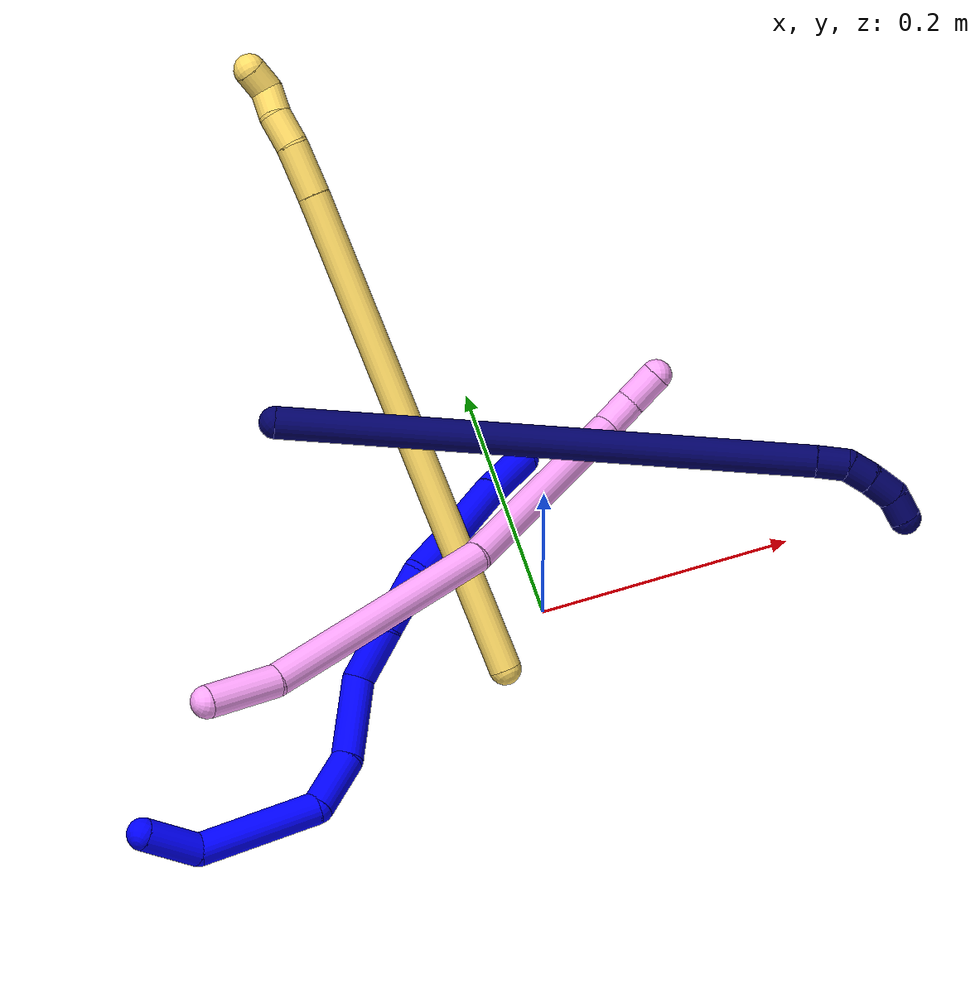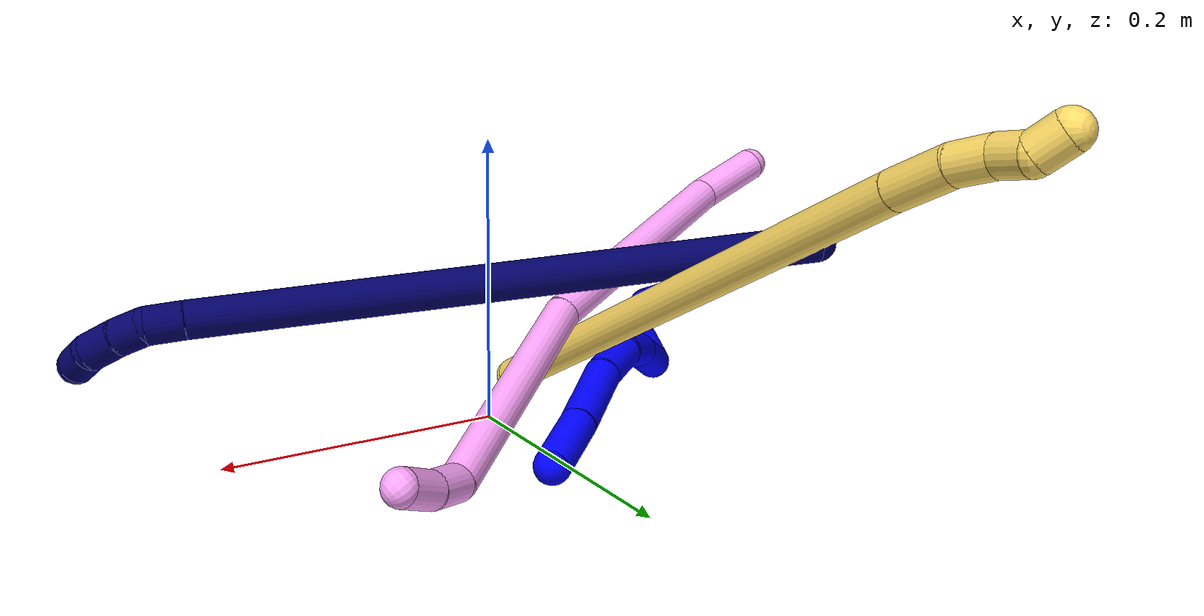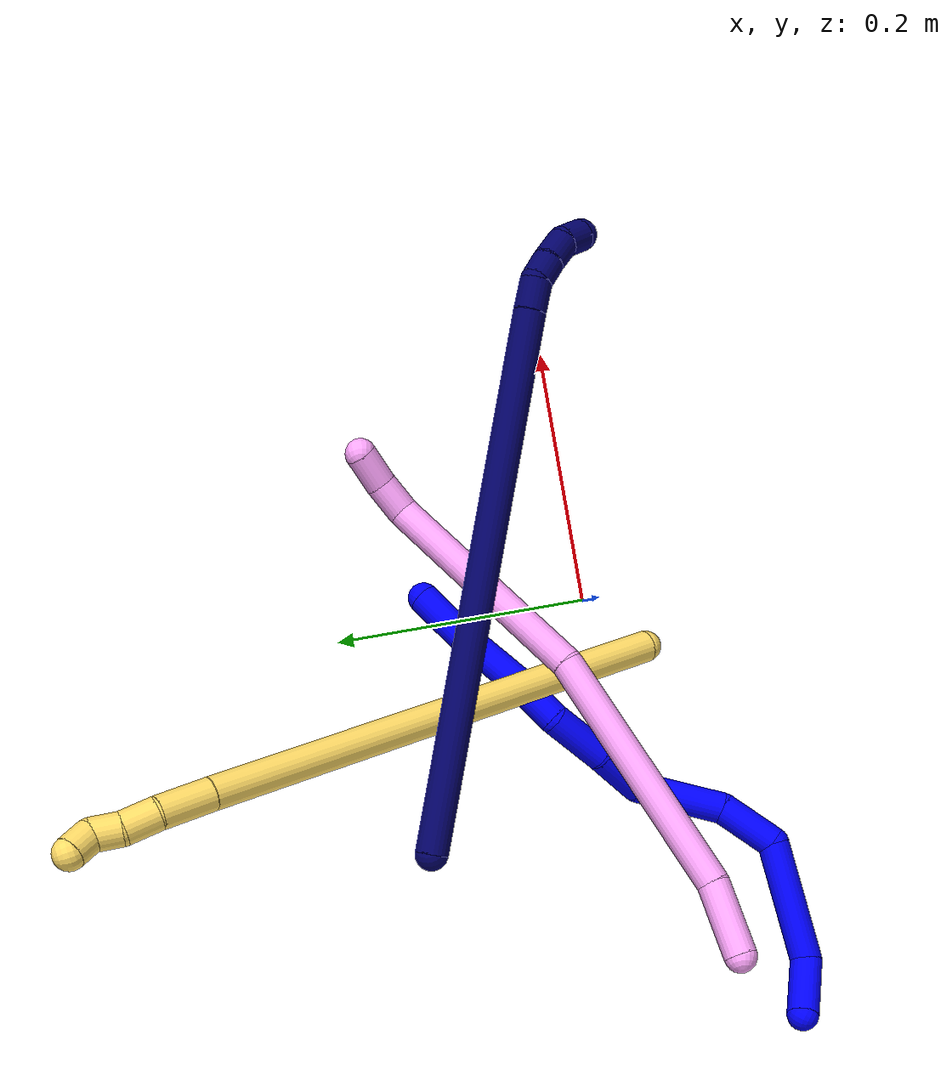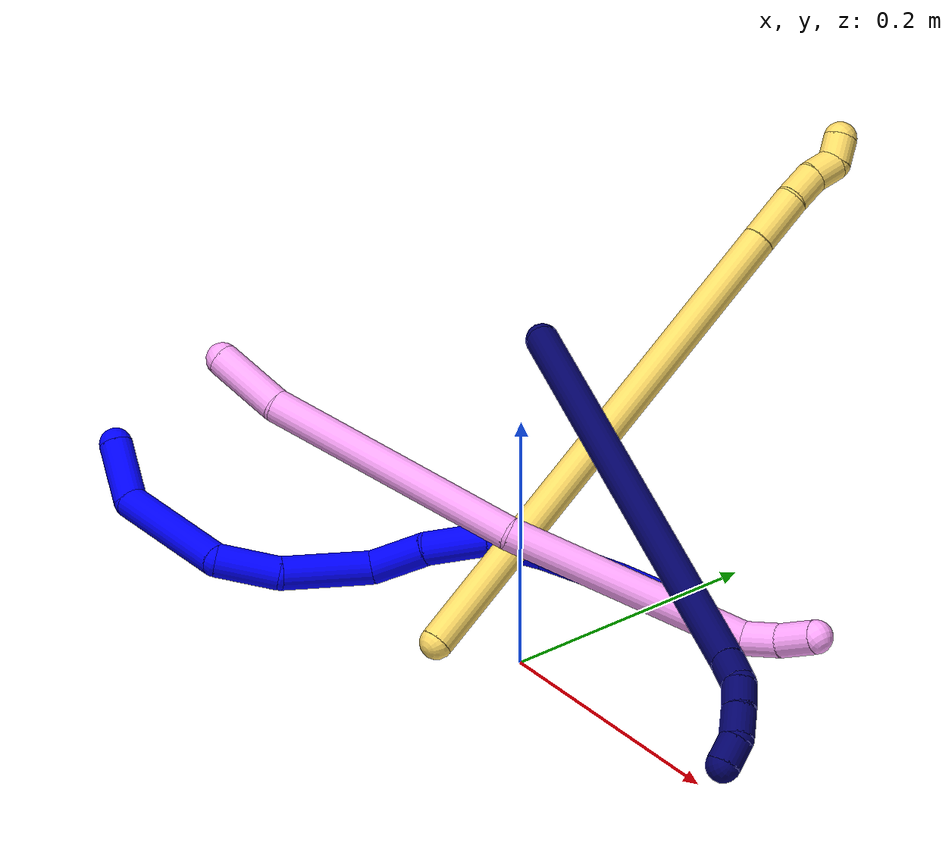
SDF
<sdf version="1.7">
 <world name="default">
  <model name="photoneo_s_sensor">
   <static>1</static>
   <pose>0 0 2 1.57079 1.57079 3.14159</pose>
   <link name="link">
    <inertial><mass>0.1</mass></inertial>
    <sensor name="sensor" type="depth">
     <update_rate>30</update_rate>
     <camera>
      <horizontal_fov>1.22</horizontal_fov>
      <image><width>1920</width><height>1200</height><format>B8G8R8</format></image>
      <clip><near>0.1</near><far>4</far></clip>
      <depth_camera><output>points</output></depth_camera>
     </camera>
     <plugin name="camera_plugin" filename="libgazebo_ros_depth_camera.so">
      <baseline>0.2</baseline>
      <alwaysOn>1</alwaysOn>
      <updateRate>0.0</updateRate>
      <cameraName>camera_ir</cameraName>
      <imageTopicName>/camera/color/image_raw</imageTopicName>
      <cameraInfoTopicName>/camera/color/camera_info</cameraInfoTopicName>
      <depthImageTopicName>/camera/depth/image_raw</depthImageTopicName>
      <depthImageCameraInfoTopicName>/camera/depth/camera_info</depthImageCameraInfoTopicName>
      <pointCloudTopicName>/camera/depth/points</pointCloudTopicName>
      <frameName>fr_optical</frameName>
      <pointCloudCutoff>0.1</pointCloudCutoff>
      <pointCloudCutoffMax>2.0</pointCloudCutoffMax>
      <distortionK1>0</distortionK1>
      <distortionK2>0</distortionK2>
      <distortionK3>0</distortionK3>
      <distortionT1>0</distortionT1>
      <distortionT2>0</distortionT2>
      <CxPrime>0</CxPrime>
      <Cx>0</Cx>
      <Cy>0</Cy>
      <focalLength>0</focalLength>
      <hackBaseline>0</hackBaseline>
     </plugin>
    </sensor>
   </link>
  </model>
  <model name="1">
   <static>0</static>
   <link name="1">
    <collision name="collision-cylinder-e_1_1_4">
     <pose>0.011284 -0.018383 -0.009575 2.05102 0.498534 0.794618</pose>
     <geometry><cylinder><radius>0.0125</radius><length>0.047199</length></cylinder></geometry>
     <surface>
      <friction><ode><mu>1.16</mu><mu2>1.16</mu2><slip1>0</slip1><slip2>0</slip2></ode></friction>
      <contact><ode><kp>1e+06</kp><kd>1</kd><max_vel>0</max_vel><min_depth>0.001</min_depth></ode></contact>
     </surface>
    </collision>
    <visual name="visual-cylinder-e_1_1_4">
     <pose>0.011284 -0.018383 -0.009575 2.05102 0.498534 0.794618</pose>
     <geometry><cylinder><radius>0.0125</radius><length>0.047199</length></cylinder></geometry>
     <material><ambient>0 0 1 1</ambient></material>
    </visual>
    <collision name="collision-cylinder-e_2_4_5">
     <pose>0.05737 -0.047546 -0.049607 2.80137 0.822556 2.39122</pose>
     <geometry><cylinder><radius>0.0125</radius><length>0.094974</length></cylinder></geometry>
     <surface>
      <friction><ode><mu>1.16</mu><mu2>1.16</mu2><slip1>0</slip1><slip2>0</slip2></ode></friction>
      <contact><ode><kp>1e+06</kp><kd>1</kd><max_vel>0</max_vel><min_depth>0.001</min_depth></ode></contact>
     </surface>
    </collision>
    <visual name="visual-cylinder-e_2_4_5">
     <pose>0.05737 -0.047546 -0.049607 2.80137 0.822556 2.39122</pose>
     <geometry><cylinder><radius>0.0125</radius><length>0.094974</length></cylinder></geometry>
     <material><ambient>0 0 1 1</ambient></material>
    </visual>
    <collision name="collision-cylinder-e_3_5_6">
     <pose>0.097305 -0.056148 -0.103307 -3.04811 0.216403 -2.32835</pose>
     <geometry><cylinder><radius>0.0125</radius><length>0.047808</length></cylinder></geometry>
     <surface>
      <friction><ode><mu>1.16</mu><mu2>1.16</mu2><slip1>0</slip1><slip2>0</slip2></ode></friction>
      <contact><ode><kp>1e+06</kp><kd>1</kd><max_vel>0</max_vel><min_depth>0.001</min_depth></ode></contact>
     </surface>
    </collision>
    <visual name="visual-cylinder-e_3_5_6">
     <pose>0.097305 -0.056148 -0.103307 -3.04811 0.216403 -2.32835</pose>
     <geometry><cylinder><radius>0.0125</radius><length>0.047808</length></cylinder></geometry>
     <material><ambient>0 0 1 1</ambient></material>
    </visual>
    <collision name="collision-cylinder-e_4_6_7">
     <pose>0.100575 -0.042153 -0.159298 -2.79532 -0.053452 0.303361</pose>
     <geometry><cylinder><radius>0.0125</radius><length>0.069725</length></cylinder></geometry>
     <surface>
      <friction><ode><mu>1.16</mu><mu2>1.16</mu2><slip1>0</slip1><slip2>0</slip2></ode></friction>
      <contact><ode><kp>1e+06</kp><kd>1</kd><max_vel>0</max_vel><min_depth>0.001</min_depth></ode></contact>
     </surface>
    </collision>
    <visual name="visual-cylinder-e_4_6_7">
     <pose>0.100575 -0.042153 -0.159298 -2.79532 -0.053452 0.303361</pose>
     <geometry><cylinder><radius>0.0125</radius><length>0.069725</length></cylinder></geometry>
     <material><ambient>0 0 1 1</ambient></material>
    </visual>
    <collision name="collision-cylinder-e_5_7_8">
     <pose>0.111567 -0.017863 -0.206488 -2.42923 0.592733 -1.37453</pose>
     <geometry><cylinder><radius>0.0125</radius><length>0.046021</length></cylinder></geometry>
     <surface>
      <friction><ode><mu>1.16</mu><mu2>1.16</mu2><slip1>0</slip1><slip2>0</slip2></ode></friction>
      <contact><ode><kp>1e+06</kp><kd>1</kd><max_vel>0</max_vel><min_depth>0.001</min_depth></ode></contact>
     </surface>
    </collision>
    <visual name="visual-cylinder-e_5_7_8">
     <pose>0.111567 -0.017863 -0.206488 -2.42923 0.592733 -1.37453</pose>
     <geometry><cylinder><radius>0.0125</radius><length>0.046021</length></cylinder></geometry>
     <material><ambient>0 0 1 1</ambient></material>
    </visual>
    <collision name="collision-cylinder-e_6_8_9">
     <pose>0.136008 0.004935 -0.24018 -2.64926 0.487725 -1.56101</pose>
     <geometry><cylinder><radius>0.0125</radius><length>0.049448</length></cylinder></geometry>
     <surface>
      <friction><ode><mu>1.16</mu><mu2>1.16</mu2><slip1>0</slip1><slip2>0</slip2></ode></friction>
      <contact><ode><kp>1e+06</kp><kd>1</kd><max_vel>0</max_vel><min_depth>0.001</min_depth></ode></contact>
     </surface>
    </collision>
    <visual name="visual-cylinder-e_6_8_9">
     <pose>0.136008 0.004935 -0.24018 -2.64926 0.487725 -1.56101</pose>
     <geometry><cylinder><radius>0.0125</radius><length>0.049448</length></cylinder></geometry>
     <material><ambient>0 0 1 1</ambient></material>
    </visual>
    <collision name="collision-cylinder-e_7_9_10">
     <pose>0.155527 0.016036 -0.278009 -3.09978 0.403207 -2.9377</pose>
     <geometry><cylinder><radius>0.0125</radius><length>0.04044</length></cylinder></geometry>
     <surface>
      <friction><ode><mu>1.16</mu><mu2>1.16</mu2><slip1>0</slip1><slip2>0</slip2></ode></friction>
      <contact><ode><kp>1e+06</kp><kd>1</kd><max_vel>0</max_vel><min_depth>0.001</min_depth></ode></contact>
     </surface>
    </collision>
    <visual name="visual-cylinder-e_7_9_10">
     <pose>0.155527 0.016036 -0.278009 -3.09978 0.403207 -2.9377</pose>
     <geometry><cylinder><radius>0.0125</radius><length>0.04044</length></cylinder></geometry>
     <material><ambient>0 0 1 1</ambient></material>
    </visual>
    <collision name="collision-cylinder-e_8_10_11">
     <pose>0.170339 0.015429 -0.324913 3.09272 0.237961 2.73825</pose>
     <geometry><cylinder><radius>0.0125</radius><length>0.058357</length></cylinder></geometry>
     <surface>
      <friction><ode><mu>1.16</mu><mu2>1.16</mu2><slip1>0</slip1><slip2>0</slip2></ode></friction>
      <contact><ode><kp>1e+06</kp><kd>1</kd><max_vel>0</max_vel><min_depth>0.001</min_depth></ode></contact>
     </surface>
    </collision>
    <visual name="visual-cylinder-e_8_10_11">
     <pose>0.170339 0.015429 -0.324913 3.09272 0.237961 2.73825</pose>
     <geometry><cylinder><radius>0.0125</radius><length>0.058357</length></cylinder></geometry>
     <material><ambient>0 0 1 1</ambient></material>
    </visual>
    <collision name="collision-cylinder-e_9_11_2">
     <pose>0.183823 0.011527 -0.375138 3.0272 0.291134 2.39691</pose>
     <geometry><cylinder><radius>0.0125</radius><length>0.046028</length></cylinder></geometry>
     <surface>
      <friction><ode><mu>1.16</mu><mu2>1.16</mu2><slip1>0</slip1><slip2>0</slip2></ode></friction>
      <contact><ode><kp>1e+06</kp><kd>1</kd><max_vel>0</max_vel><min_depth>0.001</min_depth></ode></contact>
     </surface>
    </collision>
    <visual name="visual-cylinder-e_9_11_2">
     <pose>0.183823 0.011527 -0.375138 3.0272 0.291134 2.39691</pose>
     <geometry><cylinder><radius>0.0125</radius><length>0.046028</length></cylinder></geometry>
     <material><ambient>0 0 1 1</ambient></material>
    </visual>
    <collision name="collision-sphere-2">
     <pose>0.190429 0.009011 -0.397039 0 -0 0</pose>
     <geometry><sphere><radius>0.0125</radius></sphere></geometry>
     <surface>
      <friction><ode><mu>1.16</mu><mu2>1.16</mu2><slip1>0</slip1><slip2>0</slip2></ode></friction>
      <contact><ode><kp>1e+06</kp><kd>1</kd><max_vel>0</max_vel><min_depth>0.001</min_depth></ode></contact>
     </surface>
    </collision>
    <visual name="visual-sphere-2">
     <pose>0.190429 0.009011 -0.397039 0 -0 0</pose>
     <geometry><sphere><radius>0.0125</radius></sphere></geometry>
     <material><ambient>0 0 1 1</ambient></material>
    </visual>
    <collision name="collision-sphere-11">
     <pose>0.177217 0.014043 -0.353236 0 -0 0</pose>
     <geometry><sphere><radius>0.0125</radius></sphere></geometry>
     <surface>
      <friction><ode><mu>1.16</mu><mu2>1.16</mu2><slip1>0</slip1><slip2>0</slip2></ode></friction>
      <contact><ode><kp>1e+06</kp><kd>1</kd><max_vel>0</max_vel><min_depth>0.001</min_depth></ode></contact>
     </surface>
    </collision>
    <visual name="visual-sphere-11">
     <pose>0.177217 0.014043 -0.353236 0 -0 0</pose>
     <geometry><sphere><radius>0.0125</radius></sphere></geometry>
     <material><ambient>0 0 1 1</ambient></material>
    </visual>
    <collision name="collision-sphere-10">
     <pose>0.163461 0.016814 -0.296591 0 -0 0</pose>
     <geometry><sphere><radius>0.0125</radius></sphere></geometry>
     <surface>
      <friction><ode><mu>1.16</mu><mu2>1.16</mu2><slip1>0</slip1><slip2>0</slip2></ode></friction>
      <contact><ode><kp>1e+06</kp><kd>1</kd><max_vel>0</max_vel><min_depth>0.001</min_depth></ode></contact>
     </surface>
    </collision>
    <visual name="visual-sphere-10">
     <pose>0.163461 0.016814 -0.296591 0 -0 0</pose>
     <geometry><sphere><radius>0.0125</radius></sphere></geometry>
     <material><ambient>0 0 1 1</ambient></material>
    </visual>
    <collision name="collision-sphere-9">
     <pose>0.147594 0.015259 -0.259427 0 -0 0</pose>
     <geometry><sphere><radius>0.0125</radius></sphere></geometry>
     <surface>
      <friction><ode><mu>1.16</mu><mu2>1.16</mu2><slip1>0</slip1><slip2>0</slip2></ode></friction>
      <contact><ode><kp>1e+06</kp><kd>1</kd><max_vel>0</max_vel><min_depth>0.001</min_depth></ode></contact>
     </surface>
    </collision>
    <visual name="visual-sphere-9">
     <pose>0.147594 0.015259 -0.259427 0 -0 0</pose>
     <geometry><sphere><radius>0.0125</radius></sphere></geometry>
     <material><ambient>0 0 1 1</ambient></material>
    </visual>
    <collision name="collision-sphere-4">
     <pose>0.022568 -0.036765 -0.019151 0 -0 0</pose>
     <geometry><sphere><radius>0.0125</radius></sphere></geometry>
     <surface>
      <friction><ode><mu>1.16</mu><mu2>1.16</mu2><slip1>0</slip1><slip2>0</slip2></ode></friction>
      <contact><ode><kp>1e+06</kp><kd>1</kd><max_vel>0</max_vel><min_depth>0.001</min_depth></ode></contact>
     </surface>
    </collision>
    <visual name="visual-sphere-4">
     <pose>0.022568 -0.036765 -0.019151 0 -0 0</pose>
     <geometry><sphere><radius>0.0125</radius></sphere></geometry>
     <material><ambient>0 0 1 1</ambient></material>
    </visual>
    <collision name="collision-sphere-1">
     <geometry><sphere><radius>0.0125</radius></sphere></geometry>
     <surface>
      <friction><ode><mu>1.16</mu><mu2>1.16</mu2><slip1>0</slip1><slip2>0</slip2></ode></friction>
      <contact><ode><kp>1e+06</kp><kd>1</kd><max_vel>0</max_vel><min_depth>0.001</min_depth></ode></contact>
     </surface>
    </collision>
    <visual name="visual-sphere-1">
     <geometry><sphere><radius>0.0125</radius></sphere></geometry>
     <material><ambient>0 0 1 1</ambient></material>
    </visual>
    <collision name="collision-sphere-8">
     <pose>0.124422 -0.005389 -0.220933 0 -0 0</pose>
     <geometry><sphere><radius>0.0125</radius></sphere></geometry>
     <surface>
      <friction><ode><mu>1.16</mu><mu2>1.16</mu2><slip1>0</slip1><slip2>0</slip2></ode></friction>
      <contact><ode><kp>1e+06</kp><kd>1</kd><max_vel>0</max_vel><min_depth>0.001</min_depth></ode></contact>
     </surface>
    </collision>
    <visual name="visual-sphere-8">
     <pose>0.124422 -0.005389 -0.220933 0 -0 0</pose>
     <geometry><sphere><radius>0.0125</radius></sphere></geometry>
     <material><ambient>0 0 1 1</ambient></material>
    </visual>
    <collision name="collision-sphere-5">
     <pose>0.092173 -0.058327 -0.080062 0 -0 0</pose>
     <geometry><sphere><radius>0.0125</radius></sphere></geometry>
     <surface>
      <friction><ode><mu>1.16</mu><mu2>1.16</mu2><slip1>0</slip1><slip2>0</slip2></ode></friction>
      <contact><ode><kp>1e+06</kp><kd>1</kd><max_vel>0</max_vel><min_depth>0.001</min_depth></ode></contact>
     </surface>
    </collision>
    <visual name="visual-sphere-5">
     <pose>0.092173 -0.058327 -0.080062 0 -0 0</pose>
     <geometry><sphere><radius>0.0125</radius></sphere></geometry>
     <material><ambient>0 0 1 1</ambient></material>
    </visual>
    <collision name="collision-sphere-6">
     <pose>0.102438 -0.053969 -0.126551 0 -0 0</pose>
     <geometry><sphere><radius>0.0125</radius></sphere></geometry>
     <surface>
      <friction><ode><mu>1.16</mu><mu2>1.16</mu2><slip1>0</slip1><slip2>0</slip2></ode></friction>
      <contact><ode><kp>1e+06</kp><kd>1</kd><max_vel>0</max_vel><min_depth>0.001</min_depth></ode></contact>
     </surface>
    </collision>
    <visual name="visual-sphere-6">
     <pose>0.102438 -0.053969 -0.126551 0 -0 0</pose>
     <geometry><sphere><radius>0.0125</radius></sphere></geometry>
     <material><ambient>0 0 1 1</ambient></material>
    </visual>
    <collision name="collision-sphere-7">
     <pose>0.098713 -0.030338 -0.192044 0 -0 0</pose>
     <geometry><sphere><radius>0.0125</radius></sphere></geometry>
     <surface>
      <friction><ode><mu>1.16</mu><mu2>1.16</mu2><slip1>0</slip1><slip2>0</slip2></ode></friction>
      <contact><ode><kp>1e+06</kp><kd>1</kd><max_vel>0</max_vel><min_depth>0.001</min_depth></ode></contact>
     </surface>
    </collision>
    <visual name="visual-sphere-7">
     <pose>0.098713 -0.030338 -0.192044 0 -0 0</pose>
     <geometry><sphere><radius>0.0125</radius></sphere></geometry>
     <material><ambient>0 0 1 1</ambient></material>
    </visual>
    <inertial>
     <pose>0.108393 -0.019011 -0.180118 0 -0 0</pose>
     <mass>0.5</mass>
     <inertia>
      <ixx>1.4e-05</ixx>
      <ixy>0</ixy>
      <ixz>0</ixz>
      <iyy>0.000118</iyy>
      <iyz>0</iyz>
      <izz>-0.000108</izz>
     </inertia>
    </inertial>
   </link>
   <pose>-0.345218 -0.109674 0.060497 1.16259 -0.463222 -0.430431</pose>
  </model>
  <model name="4">
   <static>0</static>
   <link name="4">
    <collision name="collision-cylinder-e_1_1_4">
     <pose>0.002273 0.007522 0.027255 -0.269299 0.080222 -0.010873</pose>
     <geometry><cylinder><radius>0.0125</radius><length>0.05673</length></cylinder></geometry>
     <surface>
      <friction><ode><mu>1.16</mu><mu2>1.16</mu2><slip1>0</slip1><slip2>0</slip2></ode></friction>
      <contact><ode><kp>1e+06</kp><kd>1</kd><max_vel>0</max_vel><min_depth>0.001</min_depth></ode></contact>
     </surface>
    </collision>
    <visual name="visual-cylinder-e_1_1_4">
     <pose>0.002273 0.007522 0.027255 -0.269299 0.080222 -0.010873</pose>
     <geometry><cylinder><radius>0.0125</radius><length>0.05673</length></cylinder></geometry>
     <material><ambient>1 0.65098 0.996078 1</ambient></material>
    </visual>
    <collision name="collision-cylinder-e_2_4_5">
     <pose>0.032391 0.051985 0.143174 -0.394763 0.282158 -0.05679</pose>
     <geometry><cylinder><radius>0.0125</radius><length>0.200013</length></cylinder></geometry>
     <surface>
      <friction><ode><mu>1.16</mu><mu2>1.16</mu2><slip1>0</slip1><slip2>0</slip2></ode></friction>
      <contact><ode><kp>1e+06</kp><kd>1</kd><max_vel>0</max_vel><min_depth>0.001</min_depth></ode></contact>
     </surface>
    </collision>
    <visual name="visual-cylinder-e_2_4_5">
     <pose>0.032391 0.051985 0.143174 -0.394763 0.282158 -0.05679</pose>
     <geometry><cylinder><radius>0.0125</radius><length>0.200013</length></cylinder></geometry>
     <material><ambient>1 0.65098 0.996078 1</ambient></material>
    </visual>
    <collision name="collision-cylinder-e_3_5_6">
     <pose>0.106191 0.119402 0.30586 -0.390562 0.521148 -0.105385</pose>
     <geometry><cylinder><radius>0.0125</radius><length>0.184606</length></cylinder></geometry>
     <surface>
      <friction><ode><mu>1.16</mu><mu2>1.16</mu2><slip1>0</slip1><slip2>0</slip2></ode></friction>
      <contact><ode><kp>1e+06</kp><kd>1</kd><max_vel>0</max_vel><min_depth>0.001</min_depth></ode></contact>
     </surface>
    </collision>
    <visual name="visual-cylinder-e_3_5_6">
     <pose>0.106191 0.119402 0.30586 -0.390562 0.521148 -0.105385</pose>
     <geometry><cylinder><radius>0.0125</radius><length>0.184606</length></cylinder></geometry>
     <material><ambient>1 0.65098 0.996078 1</ambient></material>
    </visual>
    <collision name="collision-cylinder-e_4_6_7">
     <pose>0.155295 0.160624 0.389163 -0.858465 0.218179 -0.100173</pose>
     <geometry><cylinder><radius>0.0125</radius><length>0.029089</length></cylinder></geometry>
     <surface>
      <friction><ode><mu>1.16</mu><mu2>1.16</mu2><slip1>0</slip1><slip2>0</slip2></ode></friction>
      <contact><ode><kp>1e+06</kp><kd>1</kd><max_vel>0</max_vel><min_depth>0.001</min_depth></ode></contact>
     </surface>
    </collision>
    <visual name="visual-cylinder-e_4_6_7">
     <pose>0.155295 0.160624 0.389163 -0.858465 0.218179 -0.100173</pose>
     <geometry><cylinder><radius>0.0125</radius><length>0.029089</length></cylinder></geometry>
     <material><ambient>1 0.65098 0.996078 1</ambient></material>
    </visual>
    <collision name="collision-cylinder-e_5_7_2">
     <pose>0.159261 0.183943 0.406174 -1.01951 0.055391 -0.030971</pose>
     <geometry><cylinder><radius>0.0125</radius><length>0.029561</length></cylinder></geometry>
     <surface>
      <friction><ode><mu>1.16</mu><mu2>1.16</mu2><slip1>0</slip1><slip2>0</slip2></ode></friction>
      <contact><ode><kp>1e+06</kp><kd>1</kd><max_vel>0</max_vel><min_depth>0.001</min_depth></ode></contact>
     </surface>
    </collision>
    <visual name="visual-cylinder-e_5_7_2">
     <pose>0.159261 0.183943 0.406174 -1.01951 0.055391 -0.030971</pose>
     <geometry><cylinder><radius>0.0125</radius><length>0.029561</length></cylinder></geometry>
     <material><ambient>1 0.65098 0.996078 1</ambient></material>
    </visual>
    <collision name="collision-sphere-2">
     <pose>0.16008 0.196514 0.413904 0 -0 0</pose>
     <geometry><sphere><radius>0.0125</radius></sphere></geometry>
     <surface>
      <friction><ode><mu>1.16</mu><mu2>1.16</mu2><slip1>0</slip1><slip2>0</slip2></ode></friction>
      <contact><ode><kp>1e+06</kp><kd>1</kd><max_vel>0</max_vel><min_depth>0.001</min_depth></ode></contact>
     </surface>
    </collision>
    <visual name="visual-sphere-2">
     <pose>0.16008 0.196514 0.413904 0 -0 0</pose>
     <geometry><sphere><radius>0.0125</radius></sphere></geometry>
     <material><ambient>1 0.65098 0.996078 1</ambient></material>
    </visual>
    <collision name="collision-sphere-7">
     <pose>0.158443 0.171371 0.398444 0 -0 0</pose>
     <geometry><sphere><radius>0.0125</radius></sphere></geometry>
     <surface>
      <friction><ode><mu>1.16</mu><mu2>1.16</mu2><slip1>0</slip1><slip2>0</slip2></ode></friction>
      <contact><ode><kp>1e+06</kp><kd>1</kd><max_vel>0</max_vel><min_depth>0.001</min_depth></ode></contact>
     </surface>
    </collision>
    <visual name="visual-sphere-7">
     <pose>0.158443 0.171371 0.398444 0 -0 0</pose>
     <geometry><sphere><radius>0.0125</radius></sphere></geometry>
     <material><ambient>1 0.65098 0.996078 1</ambient></material>
    </visual>
    <collision name="collision-sphere-6">
     <pose>0.152147 0.149877 0.379882 0 -0 0</pose>
     <geometry><sphere><radius>0.0125</radius></sphere></geometry>
     <surface>
      <friction><ode><mu>1.16</mu><mu2>1.16</mu2><slip1>0</slip1><slip2>0</slip2></ode></friction>
      <contact><ode><kp>1e+06</kp><kd>1</kd><max_vel>0</max_vel><min_depth>0.001</min_depth></ode></contact>
     </surface>
    </collision>
    <visual name="visual-sphere-6">
     <pose>0.152147 0.149877 0.379882 0 -0 0</pose>
     <geometry><sphere><radius>0.0125</radius></sphere></geometry>
     <material><ambient>1 0.65098 0.996078 1</ambient></material>
    </visual>
    <collision name="collision-sphere-5">
     <pose>0.060235 0.088926 0.231838 0 -0 0</pose>
     <geometry><sphere><radius>0.0125</radius></sphere></geometry>
     <surface>
      <friction><ode><mu>1.16</mu><mu2>1.16</mu2><slip1>0</slip1><slip2>0</slip2></ode></friction>
      <contact><ode><kp>1e+06</kp><kd>1</kd><max_vel>0</max_vel><min_depth>0.001</min_depth></ode></contact>
     </surface>
    </collision>
    <visual name="visual-sphere-5">
     <pose>0.060235 0.088926 0.231838 0 -0 0</pose>
     <geometry><sphere><radius>0.0125</radius></sphere></geometry>
     <material><ambient>1 0.65098 0.996078 1</ambient></material>
    </visual>
    <collision name="collision-sphere-1">
     <geometry><sphere><radius>0.0125</radius></sphere></geometry>
     <surface>
      <friction><ode><mu>1.16</mu><mu2>1.16</mu2><slip1>0</slip1><slip2>0</slip2></ode></friction>
      <contact><ode><kp>1e+06</kp><kd>1</kd><max_vel>0</max_vel><min_depth>0.001</min_depth></ode></contact>
     </surface>
    </collision>
    <visual name="visual-sphere-1">
     <geometry><sphere><radius>0.0125</radius></sphere></geometry>
     <material><ambient>1 0.65098 0.996078 1</ambient></material>
    </visual>
    <collision name="collision-sphere-4">
     <pose>0.004546 0.015045 0.05451 0 -0 0</pose>
     <geometry><sphere><radius>0.0125</radius></sphere></geometry>
     <surface>
      <friction><ode><mu>1.16</mu><mu2>1.16</mu2><slip1>0</slip1><slip2>0</slip2></ode></friction>
      <contact><ode><kp>1e+06</kp><kd>1</kd><max_vel>0</max_vel><min_depth>0.001</min_depth></ode></contact>
     </surface>
    </collision>
    <visual name="visual-sphere-4">
     <pose>0.004546 0.015045 0.05451 0 -0 0</pose>
     <geometry><sphere><radius>0.0125</radius></sphere></geometry>
     <material><ambient>1 0.65098 0.996078 1</ambient></material>
    </visual>
    <inertial>
     <pose>0.070873 0.085954 0.219948 0 -0 0</pose>
     <mass>0.5</mass>
     <inertia>
      <ixx>0.001056</ixx>
      <ixy>0</ixy>
      <ixz>0</ixz>
      <iyy>0.001075</iyy>
      <iyz>0</iyz>
      <izz>-0.000857</izz>
     </inertia>
    </inertial>
   </link>
   <pose>-0.275817 -0.060499 0.14744 2.14758 0.363947 1.77055</pose>
  </model>
  <model name="5">
   <static>0</static>
   <link name="5">
    <collision name="collision-cylinder-e_1_1_4">
     <pose>0.004282 0.073663 0.180706 -0.387077 0.021942 -0.004301</pose>
     <geometry><cylinder><radius>0.0125</radius><length>0.39038</length></cylinder></geometry>
     <surface>
      <friction><ode><mu>1.16</mu><mu2>1.16</mu2><slip1>0</slip1><slip2>0</slip2></ode></friction>
      <contact><ode><kp>1e+06</kp><kd>1</kd><max_vel>0</max_vel><min_depth>0.001</min_depth></ode></contact>
     </surface>
    </collision>
    <visual name="visual-cylinder-e_1_1_4">
     <pose>0.004282 0.073663 0.180706 -0.387077 0.021942 -0.004301</pose>
     <geometry><cylinder><radius>0.0125</radius><length>0.39038</length></cylinder></geometry>
     <material><ambient>1 0.858824 0.4 1</ambient></material>
    </visual>
    <collision name="collision-cylinder-e_2_4_5">
     <pose>0.009332 0.15436 0.380635 -0.350773 0.037482 -0.006643</pose>
     <geometry><cylinder><radius>0.0125</radius><length>0.040969</length></cylinder></geometry>
     <surface>
      <friction><ode><mu>1.16</mu><mu2>1.16</mu2><slip1>0</slip1><slip2>0</slip2></ode></friction>
      <contact><ode><kp>1e+06</kp><kd>1</kd><max_vel>0</max_vel><min_depth>0.001</min_depth></ode></contact>
     </surface>
    </collision>
    <visual name="visual-cylinder-e_2_4_5">
     <pose>0.009332 0.15436 0.380635 -0.350773 0.037482 -0.006643</pose>
     <geometry><cylinder><radius>0.0125</radius><length>0.040969</length></cylinder></geometry>
     <material><ambient>1 0.858824 0.4 1</ambient></material>
    </visual>
    <collision name="collision-cylinder-e_3_5_6">
     <pose>0.011359 0.163589 0.412695 -0.169308 0.096412 -0.008188</pose>
     <geometry><cylinder><radius>0.0125</radius><length>0.026166</length></cylinder></geometry>
     <surface>
      <friction><ode><mu>1.16</mu><mu2>1.16</mu2><slip1>0</slip1><slip2>0</slip2></ode></friction>
      <contact><ode><kp>1e+06</kp><kd>1</kd><max_vel>0</max_vel><min_depth>0.001</min_depth></ode></contact>
     </surface>
    </collision>
    <visual name="visual-cylinder-e_3_5_6">
     <pose>0.011359 0.163589 0.412695 -0.169308 0.096412 -0.008188</pose>
     <geometry><cylinder><radius>0.0125</radius><length>0.026166</length></cylinder></geometry>
     <material><ambient>1 0.858824 0.4 1</ambient></material>
    </visual>
    <collision name="collision-cylinder-e_4_6_7">
     <pose>0.011194 0.166421 0.43638 -0.058766 -0.130362 0.003837</pose>
     <geometry><cylinder><radius>0.0125</radius><length>0.021922</length></cylinder></geometry>
     <surface>
      <friction><ode><mu>1.16</mu><mu2>1.16</mu2><slip1>0</slip1><slip2>0</slip2></ode></friction>
      <contact><ode><kp>1e+06</kp><kd>1</kd><max_vel>0</max_vel><min_depth>0.001</min_depth></ode></contact>
     </surface>
    </collision>
    <visual name="visual-cylinder-e_4_6_7">
     <pose>0.011194 0.166421 0.43638 -0.058766 -0.130362 0.003837</pose>
     <geometry><cylinder><radius>0.0125</radius><length>0.021922</length></cylinder></geometry>
     <material><ambient>1 0.858824 0.4 1</ambient></material>
    </visual>
    <collision name="collision-cylinder-e_5_7_2">
     <pose>0.013603 0.172172 0.455284 -0.565559 0.382111 -0.112281</pose>
     <geometry><cylinder><radius>0.0125</radius><length>0.020563</length></cylinder></geometry>
     <surface>
      <friction><ode><mu>1.16</mu><mu2>1.16</mu2><slip1>0</slip1><slip2>0</slip2></ode></friction>
      <contact><ode><kp>1e+06</kp><kd>1</kd><max_vel>0</max_vel><min_depth>0.001</min_depth></ode></contact>
     </surface>
    </collision>
    <visual name="visual-cylinder-e_5_7_2">
     <pose>0.013603 0.172172 0.455284 -0.565559 0.382111 -0.112281</pose>
     <geometry><cylinder><radius>0.0125</radius><length>0.020563</length></cylinder></geometry>
     <material><ambient>1 0.858824 0.4 1</ambient></material>
    </visual>
    <collision name="collision-sphere-2">
     <pose>0.017437 0.177284 0.463338 0 -0 0</pose>
     <geometry><sphere><radius>0.0125</radius></sphere></geometry>
     <surface>
      <friction><ode><mu>1.16</mu><mu2>1.16</mu2><slip1>0</slip1><slip2>0</slip2></ode></friction>
      <contact><ode><kp>1e+06</kp><kd>1</kd><max_vel>0</max_vel><min_depth>0.001</min_depth></ode></contact>
     </surface>
    </collision>
    <visual name="visual-sphere-2">
     <pose>0.017437 0.177284 0.463338 0 -0 0</pose>
     <geometry><sphere><radius>0.0125</radius></sphere></geometry>
     <material><ambient>1 0.858824 0.4 1</ambient></material>
    </visual>
    <collision name="collision-sphere-7">
     <pose>0.009769 0.16706 0.447229 0 -0 0</pose>
     <geometry><sphere><radius>0.0125</radius></sphere></geometry>
     <surface>
      <friction><ode><mu>1.16</mu><mu2>1.16</mu2><slip1>0</slip1><slip2>0</slip2></ode></friction>
      <contact><ode><kp>1e+06</kp><kd>1</kd><max_vel>0</max_vel><min_depth>0.001</min_depth></ode></contact>
     </surface>
    </collision>
    <visual name="visual-sphere-7">
     <pose>0.009769 0.16706 0.447229 0 -0 0</pose>
     <geometry><sphere><radius>0.0125</radius></sphere></geometry>
     <material><ambient>1 0.858824 0.4 1</ambient></material>
    </visual>
    <collision name="collision-sphere-6">
     <pose>0.012619 0.165783 0.42553 0 -0 0</pose>
     <geometry><sphere><radius>0.0125</radius></sphere></geometry>
     <surface>
      <friction><ode><mu>1.16</mu><mu2>1.16</mu2><slip1>0</slip1><slip2>0</slip2></ode></friction>
      <contact><ode><kp>1e+06</kp><kd>1</kd><max_vel>0</max_vel><min_depth>0.001</min_depth></ode></contact>
     </surface>
    </collision>
    <visual name="visual-sphere-6">
     <pose>0.012619 0.165783 0.42553 0 -0 0</pose>
     <geometry><sphere><radius>0.0125</radius></sphere></geometry>
     <material><ambient>1 0.858824 0.4 1</ambient></material>
    </visual>
    <collision name="collision-sphere-5">
     <pose>0.0101 0.161395 0.399859 0 -0 0</pose>
     <geometry><sphere><radius>0.0125</radius></sphere></geometry>
     <surface>
      <friction><ode><mu>1.16</mu><mu2>1.16</mu2><slip1>0</slip1><slip2>0</slip2></ode></friction>
      <contact><ode><kp>1e+06</kp><kd>1</kd><max_vel>0</max_vel><min_depth>0.001</min_depth></ode></contact>
     </surface>
    </collision>
    <visual name="visual-sphere-5">
     <pose>0.0101 0.161395 0.399859 0 -0 0</pose>
     <geometry><sphere><radius>0.0125</radius></sphere></geometry>
     <material><ambient>1 0.858824 0.4 1</ambient></material>
    </visual>
    <collision name="collision-sphere-1">
     <geometry><sphere><radius>0.0125</radius></sphere></geometry>
     <surface>
      <friction><ode><mu>1.16</mu><mu2>1.16</mu2><slip1>0</slip1><slip2>0</slip2></ode></friction>
      <contact><ode><kp>1e+06</kp><kd>1</kd><max_vel>0</max_vel><min_depth>0.001</min_depth></ode></contact>
     </surface>
    </collision>
    <visual name="visual-sphere-1">
     <geometry><sphere><radius>0.0125</radius></sphere></geometry>
     <material><ambient>1 0.858824 0.4 1</ambient></material>
    </visual>
    <collision name="collision-sphere-4">
     <pose>0.008565 0.147326 0.361411 0 -0 0</pose>
     <geometry><sphere><radius>0.0125</radius></sphere></geometry>
     <surface>
      <friction><ode><mu>1.16</mu><mu2>1.16</mu2><slip1>0</slip1><slip2>0</slip2></ode></friction>
      <contact><ode><kp>1e+06</kp><kd>1</kd><max_vel>0</max_vel><min_depth>0.001</min_depth></ode></contact>
     </surface>
    </collision>
    <visual name="visual-sphere-4">
     <pose>0.008565 0.147326 0.361411 0 -0 0</pose>
     <geometry><sphere><radius>0.0125</radius></sphere></geometry>
     <material><ambient>1 0.858824 0.4 1</ambient></material>
    </visual>
    <inertial>
     <pose>0.005753 0.0931 0.23173 0 -0 0</pose>
     <mass>0.5</mass>
     <inertia>
      <ixx>0.004964</ixx>
      <ixy>0</ixy>
      <ixz>0</ixz>
      <iyy>0.00461</iyy>
      <iyz>0</iyz>
      <izz>-0.001954</izz>
     </inertia>
    </inertial>
   </link>
   <pose>-0.044284 -0.042279 0.011488 1.4283 -0.096743 -2.97596</pose>
  </model>
  <model name="7">
   <static>0</static>
   <link name="7">
    <collision name="collision-cylinder-e_1_1_4">
     <pose>0.152854 -0.04938 0.12818 0.367715 0.838727 0.165425</pose>
     <geometry><cylinder><radius>0.0125</radius><length>0.411013</length></cylinder></geometry>
     <surface>
      <friction><ode><mu>1.16</mu><mu2>1.16</mu2><slip1>0</slip1><slip2>0</slip2></ode></friction>
      <contact><ode><kp>1e+06</kp><kd>1</kd><max_vel>0</max_vel><min_depth>0.001</min_depth></ode></contact>
     </surface>
    </collision>
    <visual name="visual-cylinder-e_1_1_4">
     <pose>0.152854 -0.04938 0.12818 0.367715 0.838727 0.165425</pose>
     <geometry><cylinder><radius>0.0125</radius><length>0.411013</length></cylinder></geometry>
     <material><ambient>0.003922 0 0.403922 1</ambient></material>
    </visual>
    <collision name="collision-cylinder-e_2_4_5">
     <pose>0.315232 -0.101938 0.263609 0.413219 0.877364 0.196047</pose>
     <geometry><cylinder><radius>0.0125</radius><length>0.024767</length></cylinder></geometry>
     <surface>
      <friction><ode><mu>1.16</mu><mu2>1.16</mu2><slip1>0</slip1><slip2>0</slip2></ode></friction>
      <contact><ode><kp>1e+06</kp><kd>1</kd><max_vel>0</max_vel><min_depth>0.001</min_depth></ode></contact>
     </surface>
    </collision>
    <visual name="visual-cylinder-e_2_4_5">
     <pose>0.315232 -0.101938 0.263609 0.413219 0.877364 0.196047</pose>
     <geometry><cylinder><radius>0.0125</radius><length>0.024767</length></cylinder></geometry>
     <material><ambient>0.003922 0 0.403922 1</ambient></material>
    </visual>
    <collision name="collision-cylinder-e_3_5_6">
     <pose>0.333942 -0.109311 0.272972 1.10397 1.09814 0.720669</pose>
     <geometry><cylinder><radius>0.0125</radius><length>0.020635</length></cylinder></geometry>
     <surface>
      <friction><ode><mu>1.16</mu><mu2>1.16</mu2><slip1>0</slip1><slip2>0</slip2></ode></friction>
      <contact><ode><kp>1e+06</kp><kd>1</kd><max_vel>0</max_vel><min_depth>0.001</min_depth></ode></contact>
     </surface>
    </collision>
    <visual name="visual-cylinder-e_3_5_6">
     <pose>0.333942 -0.109311 0.272972 1.10397 1.09814 0.720669</pose>
     <geometry><cylinder><radius>0.0125</radius><length>0.020635</length></cylinder></geometry>
     <material><ambient>0.003922 0 0.403922 1</ambient></material>
    </visual>
    <collision name="collision-cylinder-e_4_6_7">
     <pose>0.353636 -0.11828 0.276219 1.33784 1.13386 0.932518</pose>
     <geometry><cylinder><radius>0.0125</radius><length>0.023196</length></cylinder></geometry>
     <surface>
      <friction><ode><mu>1.16</mu><mu2>1.16</mu2><slip1>0</slip1><slip2>0</slip2></ode></friction>
      <contact><ode><kp>1e+06</kp><kd>1</kd><max_vel>0</max_vel><min_depth>0.001</min_depth></ode></contact>
     </surface>
    </collision>
    <visual name="visual-cylinder-e_4_6_7">
     <pose>0.353636 -0.11828 0.276219 1.33784 1.13386 0.932518</pose>
     <geometry><cylinder><radius>0.0125</radius><length>0.023196</length></cylinder></geometry>
     <material><ambient>0.003922 0 0.403922 1</ambient></material>
    </visual>
    <collision name="collision-cylinder-e_5_7_2">
     <pose>0.372097 -0.128795 0.274569 2.02228 0.894782 1.30726</pose>
     <geometry><cylinder><radius>0.0125</radius><length>0.02039</length></cylinder></geometry>
     <surface>
      <friction><ode><mu>1.16</mu><mu2>1.16</mu2><slip1>0</slip1><slip2>0</slip2></ode></friction>
      <contact><ode><kp>1e+06</kp><kd>1</kd><max_vel>0</max_vel><min_depth>0.001</min_depth></ode></contact>
     </surface>
    </collision>
    <visual name="visual-cylinder-e_5_7_2">
     <pose>0.372097 -0.128795 0.274569 2.02228 0.894782 1.30726</pose>
     <geometry><cylinder><radius>0.0125</radius><length>0.02039</length></cylinder></geometry>
     <material><ambient>0.003922 0 0.403922 1</ambient></material>
    </visual>
    <collision name="collision-sphere-2">
     <pose>0.38005 -0.134535 0.271786 0 -0 0</pose>
     <geometry><sphere><radius>0.0125</radius></sphere></geometry>
     <surface>
      <friction><ode><mu>1.16</mu><mu2>1.16</mu2><slip1>0</slip1><slip2>0</slip2></ode></friction>
      <contact><ode><kp>1e+06</kp><kd>1</kd><max_vel>0</max_vel><min_depth>0.001</min_depth></ode></contact>
     </surface>
    </collision>
    <visual name="visual-sphere-2">
     <pose>0.38005 -0.134535 0.271786 0 -0 0</pose>
     <geometry><sphere><radius>0.0125</radius></sphere></geometry>
     <material><ambient>0.003922 0 0.403922 1</ambient></material>
    </visual>
    <collision name="collision-sphere-7">
     <pose>0.364144 -0.123056 0.277352 0 -0 0</pose>
     <geometry><sphere><radius>0.0125</radius></sphere></geometry>
     <surface>
      <friction><ode><mu>1.16</mu><mu2>1.16</mu2><slip1>0</slip1><slip2>0</slip2></ode></friction>
      <contact><ode><kp>1e+06</kp><kd>1</kd><max_vel>0</max_vel><min_depth>0.001</min_depth></ode></contact>
     </surface>
    </collision>
    <visual name="visual-sphere-7">
     <pose>0.364144 -0.123056 0.277352 0 -0 0</pose>
     <geometry><sphere><radius>0.0125</radius></sphere></geometry>
     <material><ambient>0.003922 0 0.403922 1</ambient></material>
    </visual>
    <collision name="collision-sphere-6">
     <pose>0.343128 -0.113505 0.275086 0 -0 0</pose>
     <geometry><sphere><radius>0.0125</radius></sphere></geometry>
     <surface>
      <friction><ode><mu>1.16</mu><mu2>1.16</mu2><slip1>0</slip1><slip2>0</slip2></ode></friction>
      <contact><ode><kp>1e+06</kp><kd>1</kd><max_vel>0</max_vel><min_depth>0.001</min_depth></ode></contact>
     </surface>
    </collision>
    <visual name="visual-sphere-6">
     <pose>0.343128 -0.113505 0.275086 0 -0 0</pose>
     <geometry><sphere><radius>0.0125</radius></sphere></geometry>
     <material><ambient>0.003922 0 0.403922 1</ambient></material>
    </visual>
    <collision name="collision-sphere-5">
     <pose>0.324756 -0.105116 0.270858 0 -0 0</pose>
     <geometry><sphere><radius>0.0125</radius></sphere></geometry>
     <surface>
      <friction><ode><mu>1.16</mu><mu2>1.16</mu2><slip1>0</slip1><slip2>0</slip2></ode></friction>
      <contact><ode><kp>1e+06</kp><kd>1</kd><max_vel>0</max_vel><min_depth>0.001</min_depth></ode></contact>
     </surface>
    </collision>
    <visual name="visual-sphere-5">
     <pose>0.324756 -0.105116 0.270858 0 -0 0</pose>
     <geometry><sphere><radius>0.0125</radius></sphere></geometry>
     <material><ambient>0.003922 0 0.403922 1</ambient></material>
    </visual>
    <collision name="collision-sphere-1">
     <geometry><sphere><radius>0.0125</radius></sphere></geometry>
     <surface>
      <friction><ode><mu>1.16</mu><mu2>1.16</mu2><slip1>0</slip1><slip2>0</slip2></ode></friction>
      <contact><ode><kp>1e+06</kp><kd>1</kd><max_vel>0</max_vel><min_depth>0.001</min_depth></ode></contact>
     </surface>
    </collision>
    <visual name="visual-sphere-1">
     <geometry><sphere><radius>0.0125</radius></sphere></geometry>
     <material><ambient>0.003922 0 0.403922 1</ambient></material>
    </visual>
    <collision name="collision-sphere-4">
     <pose>0.305708 -0.098759 0.25636 0 -0 0</pose>
     <geometry><sphere><radius>0.0125</radius></sphere></geometry>
     <surface>
      <friction><ode><mu>1.16</mu><mu2>1.16</mu2><slip1>0</slip1><slip2>0</slip2></ode></friction>
      <contact><ode><kp>1e+06</kp><kd>1</kd><max_vel>0</max_vel><min_depth>0.001</min_depth></ode></contact>
     </surface>
    </collision>
    <visual name="visual-sphere-4">
     <pose>0.305708 -0.098759 0.25636 0 -0 0</pose>
     <geometry><sphere><radius>0.0125</radius></sphere></geometry>
     <material><ambient>0.003922 0 0.403922 1</ambient></material>
    </visual>
    <inertial>
     <pose>0.186626 -0.060891 0.153701 0 -0 0</pose>
     <mass>0.5</mass>
     <inertia>
      <ixx>0.004499</ixx>
      <ixy>0</ixy>
      <ixz>0</ixz>
      <iyy>0.006232</iyy>
      <iyz>0</iyz>
      <izz>-0.002903</izz>
     </inertia>
    </inertial>
   </link>
   <pose>-0.164933 0.149392 0.139742 -0.384542 0.810419 -0.361364</pose>
  </model>
 </world>
</sdf>
